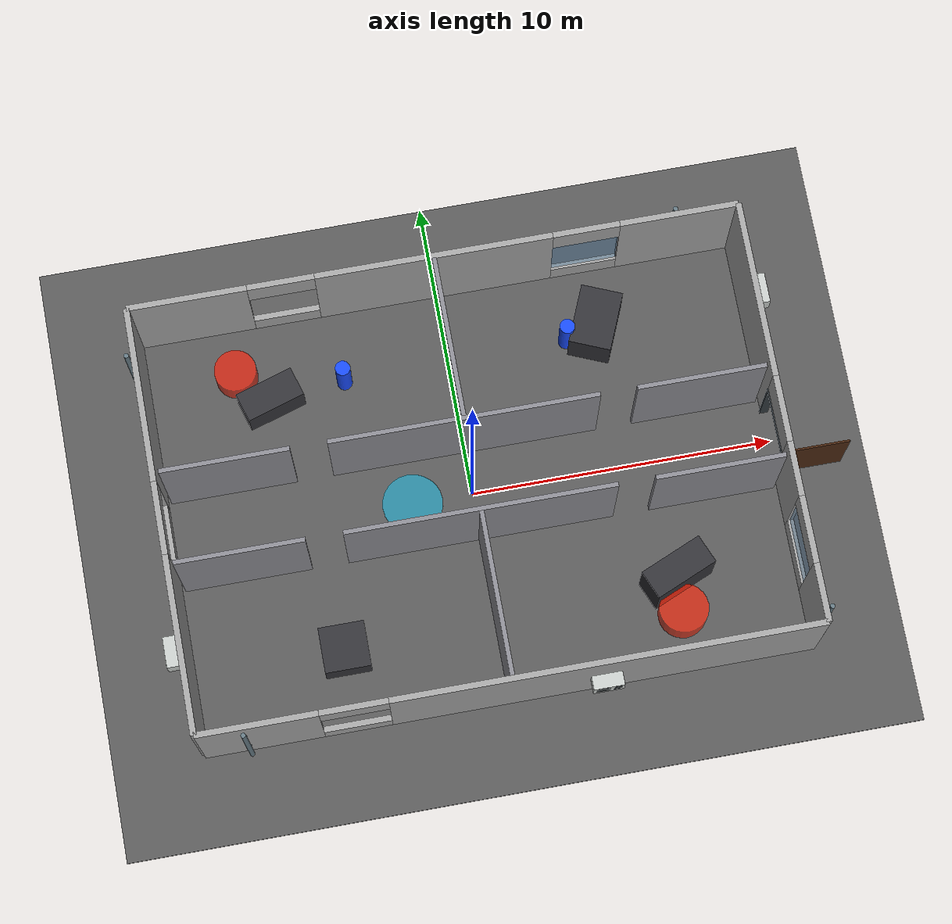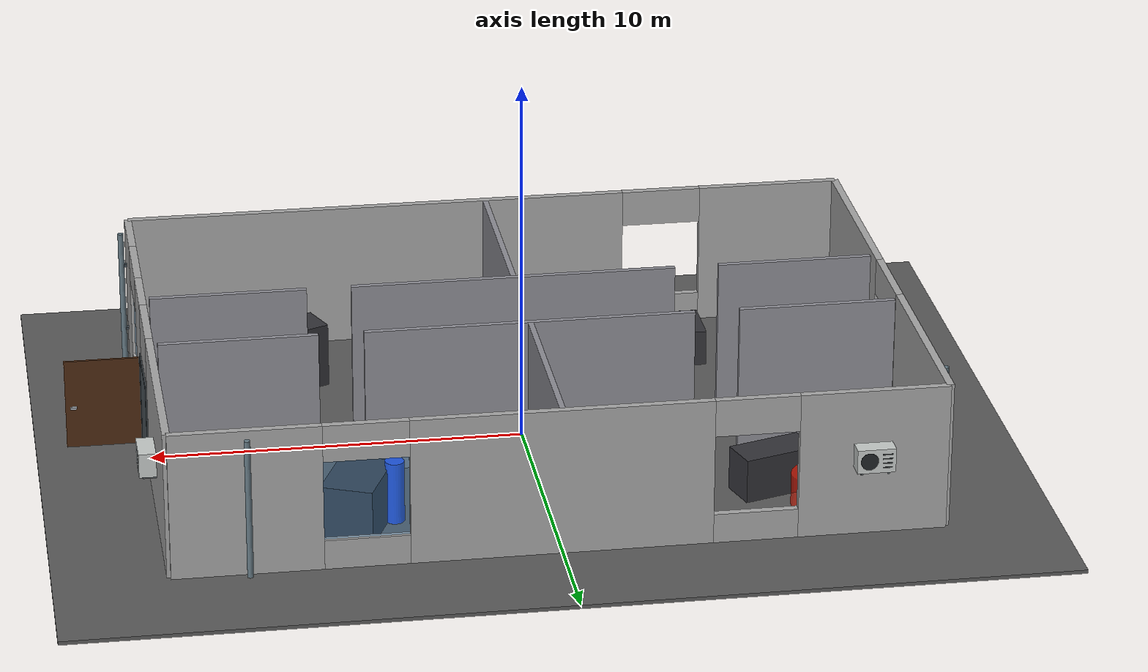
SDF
<?xml version="1.0" ?>

<sdf version="1.9">

  <world name="fire_scout_floor">

    <!-- Physics                   -->

    <physics name="1ms" type="ignored">
      <max_step_size>0.001</max_step_size>
      <real_time_factor>1.0</real_time_factor>
    </physics>

    <gravity>0 0 -9.81</gravity>

    <magnetic_field>6e-06 2.3e-05 -4.2e-05</magnetic_field>

    <atmosphere type="adiabatic"/>

    <spherical_coordinates>
      <surface_model>EARTH_WGS84</surface_model>
      <world_frame_orientation>ENU</world_frame_orientation>
      <latitude_deg>47.397971057728974</latitude_deg>
      <longitude_deg>8.546163739800146</longitude_deg>
      <elevation>488</elevation>
      <heading_deg>0</heading_deg>
    </spherical_coordinates>

    <!-- Gazebo systems            -->

    <plugin
      filename="gz-sim-physics-system"
      name="gz::sim::systems::Physics"/>

    <plugin
      filename="gz-sim-user-commands-system"
      name="gz::sim::systems::UserCommands"/>

    <plugin
      filename="gz-sim-scene-broadcaster-system"
      name="gz::sim::systems::SceneBroadcaster"/>

    <!-- Gazebo sensor systems     -->
    <!-- Required by PX4 x500      -->

    <plugin
      filename="gz-sim-sensors-system"
      name="gz::sim::systems::Sensors">
      <render_engine>ogre2</render_engine>
    </plugin>

    <plugin
      filename="gz-sim-imu-system"
      name="gz::sim::systems::Imu">
    </plugin>

    <plugin
      filename="gz-sim-air-pressure-system"
      name="gz::sim::systems::AirPressure">
    </plugin>

    <plugin
      filename="gz-sim-magnetometer-system"
      name="gz::sim::systems::Magnetometer">
    </plugin>

    <plugin
      filename="gz-sim-navsat-system"
      name="gz::sim::systems::NavSat">
    </plugin>

    <!-- Lighting                  -->

    <light type="directional" name="sun">
      <cast_shadows>true</cast_shadows>

      <pose>0 0 10 0 0 0</pose>

      <diffuse>0.8 0.8 0.8 1</diffuse>
      <specular>0.2 0.2 0.2 1</specular>

      <direction>-0.5 0.2 -1</direction>
    </light>

    <!-- Floor                     -->

    <model name="floor">

      <static>true</static>

      <link name="floor_link">

        <collision name="floor_collision">

          <pose>0 0 -0.05 0 0 0</pose>

          <geometry>
            <box>
              <size>26 20 0.1</size>
            </box>
          </geometry>

        </collision>

        <visual name="floor_visual">

          <pose>0 0 -0.05 0 0 0</pose>

          <geometry>
            <box>
              <size>26 20 0.1</size>
            </box>
          </geometry>

          <material>
            <ambient>0.30 0.30 0.30 1</ambient>
            <diffuse>0.35 0.35 0.35 1</diffuse>
          </material>

        </visual>

      </link>

    </model>

    <!-- Building                                               -->
    <!-- Size approximately 20 x 14 x 4 m                       -->
    <!-- Entrance / window on west wall                         -->

    <model name="building">

      <static>true</static>

      <!-- NORTH WALL -->

      <!-- NORTH WALL: one window for each north-side room        -->
      <!-- NW room window: centre x=-5, y=7, OPEN                 -->
      <!-- NE room window: centre x=+5, y=7, GLASS                -->
      <!-- Both openings: width=2.2 m, z=0.8~3.0 m                -->

      <!-- Wall segment: x=-10 ... -6.1 -->
      <link name="north_wall_far_west">

        <pose>-8.05 7 2 0 0 0</pose>

        <collision name="collision">
          <geometry>
            <box>
              <size>3.9 0.2 4</size>
            </box>
          </geometry>
        </collision>

        <visual name="visual">
          <geometry>
            <box>
              <size>3.9 0.2 4</size>
            </box>
          </geometry>

          <material>
            <ambient>0.65 0.65 0.65 1</ambient>
            <diffuse>0.65 0.65 0.65 1</diffuse>
          </material>
        </visual>

      </link>

      <!-- Wall segment between the two windows: x=-3.9 ... +3.9 -->
      <link name="north_wall_middle">

        <pose>0 7 2 0 0 0</pose>

        <collision name="collision">
          <geometry>
            <box>
              <size>7.8 0.2 4</size>
            </box>
          </geometry>
        </collision>

        <visual name="visual">
          <geometry>
            <box>
              <size>7.8 0.2 4</size>
            </box>
          </geometry>

          <material>
            <ambient>0.65 0.65 0.65 1</ambient>
            <diffuse>0.65 0.65 0.65 1</diffuse>
          </material>
        </visual>

      </link>

      <!-- Wall segment: x=+6.1 ... +10 -->
      <link name="north_wall_far_east">

        <pose>8.05 7 2 0 0 0</pose>

        <collision name="collision">
          <geometry>
            <box>
              <size>3.9 0.2 4</size>
            </box>
          </geometry>
        </collision>

        <visual name="visual">
          <geometry>
            <box>
              <size>3.9 0.2 4</size>
            </box>
          </geometry>

          <material>
            <ambient>0.65 0.65 0.65 1</ambient>
            <diffuse>0.65 0.65 0.65 1</diffuse>
          </material>
        </visual>

      </link>

      <!-- NW ROOM WINDOW: OPEN -->
      <link name="north_west_window_sill">

        <pose>-5 7 0.4 0 0 0</pose>

        <collision name="collision">
          <geometry>
            <box>
              <size>2.2 0.2 0.8</size>
            </box>
          </geometry>
        </collision>

        <visual name="visual">
          <geometry>
            <box>
              <size>2.2 0.2 0.8</size>
            </box>
          </geometry>

          <material>
            <ambient>0.65 0.65 0.65 1</ambient>
            <diffuse>0.65 0.65 0.65 1</diffuse>
          </material>
        </visual>

      </link>

      <link name="north_west_window_header">

        <pose>-5 7 3.5 0 0 0</pose>

        <collision name="collision">
          <geometry>
            <box>
              <size>2.2 0.2 1.0</size>
            </box>
          </geometry>
        </collision>

        <visual name="visual">
          <geometry>
            <box>
              <size>2.2 0.2 1.0</size>
            </box>
          </geometry>

          <material>
            <ambient>0.65 0.65 0.65 1</ambient>
            <diffuse>0.65 0.65 0.65 1</diffuse>
          </material>
        </visual>

      </link>

      <!-- NE ROOM WINDOW: GLASS -->
      <!-- Keep the original link names for the existing north window frame. -->
      <link name="north_window_sill">

        <pose>5 7 0.4 0 0 0</pose>

        <collision name="collision">
          <geometry>
            <box>
              <size>2.2 0.2 0.8</size>
            </box>
          </geometry>
        </collision>

        <visual name="visual">
          <geometry>
            <box>
              <size>2.2 0.2 0.8</size>
            </box>
          </geometry>

          <material>
            <ambient>0.65 0.65 0.65 1</ambient>
            <diffuse>0.65 0.65 0.65 1</diffuse>
          </material>
        </visual>

      </link>

      <link name="north_window_header">

        <pose>5 7 3.5 0 0 0</pose>

        <collision name="collision">
          <geometry>
            <box>
              <size>2.2 0.2 1.0</size>
            </box>
          </geometry>
        </collision>

        <visual name="visual">
          <geometry>
            <box>
              <size>2.2 0.2 1.0</size>
            </box>
          </geometry>

          <material>
            <ambient>0.65 0.65 0.65 1</ambient>
            <diffuse>0.65 0.65 0.65 1</diffuse>
          </material>
        </visual>

      </link>

      <!-- Physical glass panel in the NE room window -->
      <link name="north_window_glass">

        <pose>5 7 1.9 0 0 0</pose>

        <collision name="collision">
          <geometry>
            <box>
              <size>2.2 0.04 2.2</size>
            </box>
          </geometry>
        </collision>

        <visual name="visual">
          <geometry>
            <box>
              <size>2.2 0.04 2.2</size>
            </box>
          </geometry>

          <material>
            <ambient>0.25 0.55 0.80 0.35</ambient>
            <diffuse>0.25 0.55 0.80 0.35</diffuse>
            <specular>0.85 0.85 0.90 0.35</specular>
          </material>

          <transparency>0.65</transparency>
        </visual>

      </link>

      <!-- SOUTH WALL -->

      <!-- SOUTH WALL WITH SW ROOM WINDOW                         -->
      <!-- SW room window centre: x=-5, y=-7                      -->
      <!-- Window is OPEN                                         -->
      <!-- Opening: width=2.2 m, z=0.8~3.0 m                      -->

      <!-- Wall segment: x=-10 ... -6.1 -->
      <link name="south_wall_west">

        <pose>-8.05 -7 2 0 0 0</pose>

        <collision name="collision">
          <geometry>
            <box>
              <size>3.9 0.2 4</size>
            </box>
          </geometry>
        </collision>

        <visual name="visual">
          <geometry>
            <box>
              <size>3.9 0.2 4</size>
            </box>
          </geometry>

          <material>
            <ambient>0.65 0.65 0.65 1</ambient>
            <diffuse>0.65 0.65 0.65 1</diffuse>
          </material>
        </visual>

      </link>

      <!-- Wall segment: x=-3.9 ... +10 -->
      <link name="south_wall_east">

        <pose>3.05 -7 2 0 0 0</pose>

        <collision name="collision">
          <geometry>
            <box>
              <size>13.9 0.2 4</size>
            </box>
          </geometry>
        </collision>

        <visual name="visual">
          <geometry>
            <box>
              <size>13.9 0.2 4</size>
            </box>
          </geometry>

          <material>
            <ambient>0.65 0.65 0.65 1</ambient>
            <diffuse>0.65 0.65 0.65 1</diffuse>
          </material>
        </visual>

      </link>

      <!-- SW ROOM WINDOW: OPEN -->
      <link name="south_west_window_sill">

        <pose>-5 -7 0.4 0 0 0</pose>

        <collision name="collision">
          <geometry>
            <box>
              <size>2.2 0.2 0.8</size>
            </box>
          </geometry>
        </collision>

        <visual name="visual">
          <geometry>
            <box>
              <size>2.2 0.2 0.8</size>
            </box>
          </geometry>

          <material>
            <ambient>0.65 0.65 0.65 1</ambient>
            <diffuse>0.65 0.65 0.65 1</diffuse>
          </material>
        </visual>

      </link>

      <link name="south_west_window_header">

        <pose>-5 -7 3.5 0 0 0</pose>

        <collision name="collision">
          <geometry>
            <box>
              <size>2.2 0.2 1.0</size>
            </box>
          </geometry>
        </collision>

        <visual name="visual">
          <geometry>
            <box>
              <size>2.2 0.2 1.0</size>
            </box>
          </geometry>

          <material>
            <ambient>0.65 0.65 0.65 1</ambient>
            <diffuse>0.65 0.65 0.65 1</diffuse>
          </material>
        </visual>

      </link>

      <!-- EAST WALL -->

    <!-- EAST WALL WITH WINDOW C                                -->
    <!-- Window centre: x=10, y=-4                              -->
    <!-- Opening: width=2.2 m, z=0.8~3.0 m                      -->

    <link name="east_wall_south">

    <pose>10 -6.05 2 0 0 0</pose>

    <collision name="collision">
        <geometry>
        <box>
            <size>0.2 1.9 4</size>
        </box>
        </geometry>
    </collision>

    <visual name="visual">
        <geometry>
        <box>
            <size>0.2 1.9 4</size>
        </box>
        </geometry>

        <material>
        <ambient>0.65 0.65 0.65 1</ambient>
        <diffuse>0.65 0.65 0.65 1</diffuse>
        </material>
    </visual>

    </link>

      <link name="east_wall_door_south">
        <pose>10 -2 2 0 0 0</pose>
        <collision name="body_collision">
          <pose>0 0 0 0 0 0</pose>
          <geometry>
            <box>
              <size>0.2 1.8 4</size>
            </box>
          </geometry>
        </collision>
        <visual name="body_visual">
          <pose>0 0 0 0 0 0</pose>
          <geometry>
            <box>
              <size>0.2 1.8 4</size>
            </box>
          </geometry>
          <material>
            <ambient>0.65 0.65 0.65 1</ambient>
            <diffuse>0.65 0.65 0.65 1</diffuse>
          </material>
        </visual>
      </link>

      <link name="east_wall_door_north">
        <pose>10 4.05 2 0 0 0</pose>
        <collision name="body_collision">
          <pose>0 0 0 0 0 0</pose>
          <geometry>
            <box>
              <size>0.2 5.9 4</size>
            </box>
          </geometry>
        </collision>
        <visual name="body_visual">
          <pose>0 0 0 0 0 0</pose>
          <geometry>
            <box>
              <size>0.2 5.9 4</size>
            </box>
          </geometry>
          <material>
            <ambient>0.65 0.65 0.65 1</ambient>
            <diffuse>0.65 0.65 0.65 1</diffuse>
          </material>
        </visual>
      </link>

      <link name="east_door_wall_header">
        <pose>10 0 3.3 0 0 0</pose>
        <collision name="body_collision">
          <pose>0 0 0 0 0 0</pose>
          <geometry>
            <box>
              <size>0.2 2.2 1.4</size>
            </box>
          </geometry>
        </collision>
        <visual name="body_visual">
          <pose>0 0 0 0 0 0</pose>
          <geometry>
            <box>
              <size>0.2 2.2 1.4</size>
            </box>
          </geometry>
          <material>
            <ambient>0.65 0.65 0.65 1</ambient>
            <diffuse>0.65 0.65 0.65 1</diffuse>
          </material>
        </visual>
      </link>

      <link name="east_door_jamb_south">
        <pose>10 -1.05 1.3 0 0 0</pose>
        <collision name="body_collision">
          <pose>0 0 0 0 0 0</pose>
          <geometry>
            <box>
              <size>0.28 0.1 2.6</size>
            </box>
          </geometry>
        </collision>
        <visual name="body_visual">
          <pose>0 0 0 0 0 0</pose>
          <geometry>
            <box>
              <size>0.28 0.1 2.6</size>
            </box>
          </geometry>
          <material>
            <ambient>0.20 0.23 0.25 1</ambient>
            <diffuse>0.20 0.23 0.25 1</diffuse>
          </material>
        </visual>
      </link>

      <link name="east_door_jamb_north">
        <pose>10 1.05 1.3 0 0 0</pose>
        <collision name="body_collision">
          <pose>0 0 0 0 0 0</pose>
          <geometry>
            <box>
              <size>0.28 0.1 2.6</size>
            </box>
          </geometry>
        </collision>
        <visual name="body_visual">
          <pose>0 0 0 0 0 0</pose>
          <geometry>
            <box>
              <size>0.28 0.1 2.6</size>
            </box>
          </geometry>
          <material>
            <ambient>0.20 0.23 0.25 1</ambient>
            <diffuse>0.20 0.23 0.25 1</diffuse>
          </material>
        </visual>
      </link>

      <link name="east_door_frame_top">
        <pose>10 0 2.55 0 0 0</pose>
        <collision name="body_collision">
          <pose>0 0 0 0 0 0</pose>
          <geometry>
            <box>
              <size>0.28 2 0.1</size>
            </box>
          </geometry>
        </collision>
        <visual name="body_visual">
          <pose>0 0 0 0 0 0</pose>
          <geometry>
            <box>
              <size>0.28 2 0.1</size>
            </box>
          </geometry>
          <material>
            <ambient>0.20 0.23 0.25 1</ambient>
            <diffuse>0.20 0.23 0.25 1</diffuse>
          </material>
        </visual>
      </link>

      <link name="east_door_leaf_open">
        <pose>11.16 -1.05 1.25 0 0 0</pose>
        <collision name="body_collision">
          <pose>0 0 0 0 0 0</pose>
          <geometry>
            <box>
              <size>2 0.06 2.5</size>
            </box>
          </geometry>
        </collision>
        <visual name="body_visual">
          <pose>0 0 0 0 0 0</pose>
          <geometry>
            <box>
              <size>2 0.06 2.5</size>
            </box>
          </geometry>
          <material>
            <ambient>0.30 0.16 0.07 1</ambient>
            <diffuse>0.30 0.16 0.07 1</diffuse>
          </material>
        </visual>
        <collision name="handle_collision">
          <pose>0.78 0.065 -0.1 0 0 0</pose>
          <geometry>
            <box>
              <size>0.18 0.07 0.06</size>
            </box>
          </geometry>
        </collision>
        <visual name="handle_visual">
          <pose>0.78 0.065 -0.1 0 0 0</pose>
          <geometry>
            <box>
              <size>0.18 0.07 0.06</size>
            </box>
          </geometry>
          <material>
            <ambient>0.65 0.67 0.70 1</ambient>
            <diffuse>0.65 0.67 0.70 1</diffuse>
          </material>
        </visual>
      </link>

    <link name="east_window_sill">

    <pose>10 -4 0.4 0 0 0</pose>

    <collision name="collision">
        <geometry>
        <box>
            <size>0.2 2.2 0.8</size>
        </box>
        </geometry>
    </collision>

    <visual name="visual">
        <geometry>
        <box>
            <size>0.2 2.2 0.8</size>
        </box>
        </geometry>

        <material>
        <ambient>0.65 0.65 0.65 1</ambient>
        <diffuse>0.65 0.65 0.65 1</diffuse>
        </material>
    </visual>

    </link>

    <link name="east_window_header">

    <pose>10 -4 3.5 0 0 0</pose>

    <collision name="collision">
        <geometry>
        <box>
            <size>0.2 2.2 1.0</size>
        </box>
        </geometry>
    </collision>

    <visual name="visual">
        <geometry>
        <box>
            <size>0.2 2.2 1.0</size>
        </box>
        </geometry>

        <material>
        <ambient>0.65 0.65 0.65 1</ambient>
        <diffuse>0.65 0.65 0.65 1</diffuse>
        </material>
    </visual>

    </link>

      <!-- SE ROOM WINDOW: GLASS -->
      <!-- Existing east window centre: x=10, y=-4 -->
      <link name="east_window_glass">

        <pose>10 -4 1.9 0 0 0</pose>

        <collision name="collision">
          <geometry>
            <box>
              <size>0.04 2.2 2.2</size>
            </box>
          </geometry>
        </collision>

        <visual name="visual">
          <geometry>
            <box>
              <size>0.04 2.2 2.2</size>
            </box>
          </geometry>

          <material>
            <ambient>0.25 0.55 0.80 0.35</ambient>
            <diffuse>0.25 0.55 0.80 0.35</diffuse>
            <specular>0.85 0.85 0.90 0.35</specular>
          </material>

          <transparency>0.65</transparency>
        </visual>

      </link>

      <!-- WEST CORRIDOR ENTRANCE / ORIGINAL OPENING               -->
      <!-- This opening remains open and is NOT counted as a room   -->
      <!-- window. It preserves the original west-side entry path.  -->

      <!-- WEST WALL LOWER PART -->

      <link name="west_wall_lower">

        <pose>-10 -4.1 2 0 0 0</pose>

        <collision name="collision">
          <geometry>
            <box>
              <size>0.2 5.8 4</size>
            </box>
          </geometry>
        </collision>

        <visual name="visual">
          <geometry>
            <box>
              <size>0.2 5.8 4</size>
            </box>
          </geometry>

          <material>
            <ambient>0.65 0.65 0.65 1</ambient>
            <diffuse>0.65 0.65 0.65 1</diffuse>
          </material>
        </visual>

      </link>

      <!-- WEST WALL UPPER PART -->

      <link name="west_wall_upper">

        <pose>-10 4.1 2 0 0 0</pose>

        <collision name="collision">
          <geometry>
            <box>
              <size>0.2 5.8 4</size>
            </box>
          </geometry>
        </collision>

        <visual name="visual">
          <geometry>
            <box>
              <size>0.2 5.8 4</size>
            </box>
          </geometry>

          <material>
            <ambient>0.65 0.65 0.65 1</ambient>
            <diffuse>0.65 0.65 0.65 1</diffuse>
          </material>
        </visual>

      </link>

      <!-- WINDOW SILL -->

      <link name="window_sill">

        <pose>-10 0 0.4 0 0 0</pose>

        <collision name="collision">
          <geometry>
            <box>
              <size>0.2 2.4 0.8</size>
            </box>
          </geometry>
        </collision>

        <visual name="visual">
          <geometry>
            <box>
              <size>0.2 2.4 0.8</size>
            </box>
          </geometry>

          <material>
            <ambient>0.65 0.65 0.65 1</ambient>
            <diffuse>0.65 0.65 0.65 1</diffuse>
          </material>
        </visual>

      </link>

      <!-- WINDOW HEADER -->

      <link name="window_header">

        <pose>-10 0 3.5 0 0 0</pose>

        <collision name="collision">
          <geometry>
            <box>
              <size>0.2 2.4 1.0</size>
            </box>
          </geometry>
        </collision>

        <visual name="visual">
          <geometry>
            <box>
              <size>0.2 2.4 1.0</size>
            </box>
          </geometry>

          <material>
            <ambient>0.65 0.65 0.65 1</ambient>
            <diffuse>0.65 0.65 0.65 1</diffuse>
          </material>
        </visual>

      </link>

      <!-- CENTRAL CORRIDOR NORTH WALL -->

      <link name="corridor_north_left">

        <pose>-7.7 1.5 2 0 0 0</pose>

        <collision name="collision">
          <geometry>
            <box>
              <size>4.2 0.15 4</size>
            </box>
          </geometry>
        </collision>

        <visual name="visual">
          <geometry>
            <box>
              <size>4.2 0.15 4</size>
            </box>
          </geometry>

          <material>
            <ambient>0.55 0.55 0.58 1</ambient>
            <diffuse>0.55 0.55 0.58 1</diffuse>
          </material>
        </visual>

      </link>

      <link name="corridor_north_middle">

        <pose>0 1.5 2 0 0 0</pose>

        <collision name="collision">
          <geometry>
            <box>
              <size>8.8 0.15 4</size>
            </box>
          </geometry>
        </collision>

        <visual name="visual">
          <geometry>
            <box>
              <size>8.8 0.15 4</size>
            </box>
          </geometry>

          <material>
            <ambient>0.55 0.55 0.58 1</ambient>
            <diffuse>0.55 0.55 0.58 1</diffuse>
          </material>
        </visual>

      </link>

      <link name="corridor_north_right">

        <pose>7.7 1.5 2 0 0 0</pose>

        <collision name="collision">
          <geometry>
            <box>
              <size>4.2 0.15 4</size>
            </box>
          </geometry>
        </collision>

        <visual name="visual">
          <geometry>
            <box>
              <size>4.2 0.15 4</size>
            </box>
          </geometry>

          <material>
            <ambient>0.55 0.55 0.58 1</ambient>
            <diffuse>0.55 0.55 0.58 1</diffuse>
          </material>
        </visual>

      </link>

      <!-- CENTRAL CORRIDOR SOUTH WALL -->

      <link name="corridor_south_left">

        <pose>-7.7 -1.5 2 0 0 0</pose>

        <collision name="collision">
          <geometry>
            <box>
              <size>4.2 0.15 4</size>
            </box>
          </geometry>
        </collision>

        <visual name="visual">
          <geometry>
            <box>
              <size>4.2 0.15 4</size>
            </box>
          </geometry>

          <material>
            <ambient>0.55 0.55 0.58 1</ambient>
            <diffuse>0.55 0.55 0.58 1</diffuse>
          </material>
        </visual>

      </link>

      <link name="corridor_south_middle">

        <pose>0 -1.5 2 0 0 0</pose>

        <collision name="collision">
          <geometry>
            <box>
              <size>8.8 0.15 4</size>
            </box>
          </geometry>
        </collision>

        <visual name="visual">
          <geometry>
            <box>
              <size>8.8 0.15 4</size>
            </box>
          </geometry>

          <material>
            <ambient>0.55 0.55 0.58 1</ambient>
            <diffuse>0.55 0.55 0.58 1</diffuse>
          </material>
        </visual>

      </link>

      <link name="corridor_south_right">

        <pose>7.7 -1.5 2 0 0 0</pose>

        <collision name="collision">
          <geometry>
            <box>
              <size>4.2 0.15 4</size>
            </box>
          </geometry>
        </collision>

        <visual name="visual">
          <geometry>
            <box>
              <size>4.2 0.15 4</size>
            </box>
          </geometry>

          <material>
            <ambient>0.55 0.55 0.58 1</ambient>
            <diffuse>0.55 0.55 0.58 1</diffuse>
          </material>
        </visual>

      </link>

      <!-- ROOM DIVIDER NORTH -->

      <link name="north_divider">

        <pose>0 4.25 2 0 0 0</pose>

        <collision name="collision">
          <geometry>
            <box>
              <size>0.15 5.35 4</size>
            </box>
          </geometry>
        </collision>

        <visual name="visual">
          <geometry>
            <box>
              <size>0.15 5.35 4</size>
            </box>
          </geometry>

          <material>
            <ambient>0.55 0.55 0.58 1</ambient>
            <diffuse>0.55 0.55 0.58 1</diffuse>
          </material>
        </visual>

      </link>

      <!-- ROOM DIVIDER SOUTH -->

      <link name="south_divider">

        <pose>0 -4.25 2 0 0 0</pose>

        <collision name="collision">
          <geometry>
            <box>
              <size>0.15 5.35 4</size>
            </box>
          </geometry>
        </collision>

        <visual name="visual">
          <geometry>
            <box>
              <size>0.15 5.35 4</size>
            </box>
          </geometry>

          <material>
            <ambient>0.55 0.55 0.58 1</ambient>
            <diffuse>0.55 0.55 0.58 1</diffuse>
          </material>
        </visual>

      </link>

    </model>

    <!-- Large obstacles           -->

    <model name="obstacle_region1">

      <static>true</static>

      <pose>-6 4.2 0.6 0 0 0.3</pose>

      <link name="link">

        <collision name="collision">
          <geometry>
            <box>
              <size>2.0 1.0 1.2</size>
            </box>
          </geometry>
        </collision>

        <visual name="visual">
          <geometry>
            <box>
              <size>2.0 1.0 1.2</size>
            </box>
          </geometry>

          <material>
            <ambient>0.20 0.20 0.22 1</ambient>
            <diffuse>0.20 0.20 0.22 1</diffuse>
          </material>
        </visual>

      </link>

    </model>

    <model name="obstacle_region2">

      <static>true</static>

      <pose>5 4.8 0.75 0 0 -0.4</pose>

      <link name="link">

        <collision name="collision">
          <geometry>
            <box>
              <size>1.4 2.0 1.5</size>
            </box>
          </geometry>
        </collision>

        <visual name="visual">
          <geometry>
            <box>
              <size>1.4 2.0 1.5</size>
            </box>
          </geometry>

          <material>
            <ambient>0.20 0.20 0.22 1</ambient>
            <diffuse>0.20 0.20 0.22 1</diffuse>
          </material>
        </visual>

      </link>

    </model>

    <model name="obstacle_region3">

      <static>true</static>

      <pose>-5 -4.5 0.5 0 0 0</pose>

      <link name="link">

        <collision name="collision">
          <geometry>
            <box>
              <size>1.5 1.5 1.0</size>
            </box>
          </geometry>
        </collision>

        <visual name="visual">
          <geometry>
            <box>
              <size>1.5 1.5 1.0</size>
            </box>
          </geometry>

          <material>
            <ambient>0.20 0.20 0.22 1</ambient>
            <diffuse>0.20 0.20 0.22 1</diffuse>
          </material>
        </visual>

      </link>

    </model>

    <model name="obstacle_region4">

      <static>true</static>

      <pose>6 -4 0.9 0 0 0.4</pose>

      <link name="link">

        <collision name="collision">
          <geometry>
            <box>
              <size>2.2 1.0 1.8</size>
            </box>
          </geometry>
        </collision>

        <visual name="visual">
          <geometry>
            <box>
              <size>2.2 1.0 1.8</size>
            </box>
          </geometry>

          <material>
            <ambient>0.20 0.20 0.22 1</ambient>
            <diffuse>0.20 0.20 0.22 1</diffuse>
          </material>
        </visual>

      </link>

    </model>

    <!-- Fire Ground Truth Targets -->
    <!-- purely visual for Phase 1 -->

    <model name="fire_01">

      <static>true</static>

      <pose>-7 5.3 0.45 0 0 0</pose>

      <link name="link">

        <visual name="visual">

          <geometry>
            <cylinder>
              <radius>0.7</radius>
              <length>0.9</length>
            </cylinder>
          </geometry>

          <material>
            <ambient>1.0 0.10 0.0 0.65</ambient>
            <diffuse>1.0 0.10 0.0 0.65</diffuse>
          </material>

        </visual>

      </link>

    </model>

    <model name="fire_02">

      <static>true</static>

      <pose>6 -5.2 0.5 0 0 0</pose>

      <link name="link">

        <visual name="visual">

          <geometry>
            <cylinder>
              <radius>0.8</radius>
              <length>1.0</length>
            </cylinder>
          </geometry>

          <material>
            <ambient>1.0 0.12 0.0 0.65</ambient>
            <diffuse>1.0 0.12 0.0 0.65</diffuse>
          </material>

        </visual>

      </link>

    </model>

    <!-- Person Ground Truth       -->

    <model name="victim_01">

      <static>true</static>

      <pose>-3.5 4.5 0.85 0 0 0</pose>

      <link name="link">

        <collision name="collision">

          <geometry>
            <cylinder>
              <radius>0.25</radius>
              <length>1.7</length>
            </cylinder>
          </geometry>

        </collision>

        <visual name="visual">

          <geometry>
            <cylinder>
              <radius>0.25</radius>
              <length>1.7</length>
            </cylinder>
          </geometry>

          <material>
            <ambient>0.1 0.3 1.0 1</ambient>
            <diffuse>0.1 0.3 1.0 1</diffuse>
          </material>

        </visual>

      </link>

    </model>

    <model name="victim_02">

      <static>true</static>

      <pose>4.0 4.6 0.85 0 0 0</pose>

      <link name="link">

        <collision name="collision">

          <geometry>
            <cylinder>
              <radius>0.25</radius>
              <length>1.7</length>
            </cylinder>
          </geometry>

        </collision>

        <visual name="visual">

          <geometry>
            <cylinder>
              <radius>0.25</radius>
              <length>1.7</length>
            </cylinder>
          </geometry>

          <material>
            <ambient>0.1 0.3 1.0 1</ambient>
            <diffuse>0.1 0.3 1.0 1</diffuse>
          </material>

        </visual>

      </link>

    </model>

    <!-- Rendezvous visual marker  -->

    <model name="rendezvous_marker">

      <static>true</static>

      <pose>-2 0 0.03 0 0 0</pose>

      <link name="link">

        <visual name="visual">

          <geometry>
            <cylinder>
              <radius>1.0</radius>
              <length>0.03</length>
            </cylinder>
          </geometry>

          <material>
            <ambient>0.0 0.8 1.0 0.45</ambient>
            <diffuse>0.0 0.8 1.0 0.45</diffuse>
          </material>

        </visual>

      </link>

    </model>

    <model name="ac_outdoor_west">
      <static>true</static>
      <pose>-10.365 -4 2.3 0 0 -1.5707963</pose>
      <link name="housing">
        <collision name="housing_collision">
          <pose>0 0 0 0 0 0</pose>
          <geometry>
            <box>
              <size>1 0.45 0.65</size>
            </box>
          </geometry>
        </collision>
        <visual name="housing_visual">
          <pose>0 0 0 0 0 0</pose>
          <geometry>
            <box>
              <size>1 0.45 0.65</size>
            </box>
          </geometry>
          <material>
            <ambient>0.78 0.80 0.79 1</ambient>
            <diffuse>0.78 0.80 0.79 1</diffuse>
          </material>
        </visual>
        <visual name="fan_visual">
          <pose>-0.18 -0.227 0 1.5707963 0 0</pose>
          <geometry>
            <cylinder>
              <radius>0.23</radius>
              <length>0.008</length>
            </cylinder>
          </geometry>
          <material>
            <ambient>0.12 0.14 0.15 1</ambient>
            <diffuse>0.12 0.14 0.15 1</diffuse>
          </material>
        </visual>
        <visual name="vent_0_visual">
          <pose>0.29 -0.23 -0.18 0 0 0</pose>
          <geometry>
            <box>
              <size>0.25 0.012 0.025</size>
            </box>
          </geometry>
          <material>
            <ambient>0.24 0.26 0.27 1</ambient>
            <diffuse>0.24 0.26 0.27 1</diffuse>
          </material>
        </visual>
        <visual name="vent_1_visual">
          <pose>0.29 -0.23 -0.06 0 0 0</pose>
          <geometry>
            <box>
              <size>0.25 0.012 0.025</size>
            </box>
          </geometry>
          <material>
            <ambient>0.24 0.26 0.27 1</ambient>
            <diffuse>0.24 0.26 0.27 1</diffuse>
          </material>
        </visual>
        <visual name="vent_2_visual">
          <pose>0.29 -0.23 0.06 0 0 0</pose>
          <geometry>
            <box>
              <size>0.25 0.012 0.025</size>
            </box>
          </geometry>
          <material>
            <ambient>0.24 0.26 0.27 1</ambient>
            <diffuse>0.24 0.26 0.27 1</diffuse>
          </material>
        </visual>
        <visual name="vent_3_visual">
          <pose>0.29 -0.23 0.18 0 0 0</pose>
          <geometry>
            <box>
              <size>0.25 0.012 0.025</size>
            </box>
          </geometry>
          <material>
            <ambient>0.24 0.26 0.27 1</ambient>
            <diffuse>0.24 0.26 0.27 1</diffuse>
          </material>
        </visual>
        <collision name="bracket_0_collision">
          <pose>-0.35 0.05 -0.37 0 0 0</pose>
          <geometry>
            <box>
              <size>0.06 0.36 0.08</size>
            </box>
          </geometry>
        </collision>
        <visual name="bracket_0_visual">
          <pose>-0.35 0.05 -0.37 0 0 0</pose>
          <geometry>
            <box>
              <size>0.06 0.36 0.08</size>
            </box>
          </geometry>
          <material>
            <ambient>0.35 0.38 0.40 1</ambient>
            <diffuse>0.35 0.38 0.40 1</diffuse>
          </material>
        </visual>
        <collision name="bracket_1_collision">
          <pose>0.35 0.05 -0.37 0 0 0</pose>
          <geometry>
            <box>
              <size>0.06 0.36 0.08</size>
            </box>
          </geometry>
        </collision>
        <visual name="bracket_1_visual">
          <pose>0.35 0.05 -0.37 0 0 0</pose>
          <geometry>
            <box>
              <size>0.06 0.36 0.08</size>
            </box>
          </geometry>
          <material>
            <ambient>0.35 0.38 0.40 1</ambient>
            <diffuse>0.35 0.38 0.40 1</diffuse>
          </material>
        </visual>
      </link>
    </model>

    <model name="ac_outdoor_north">
      <static>true</static>
      <pose>-8 7.365 2.25 0 0 3.1415927</pose>
      <link name="housing">
        <collision name="housing_collision">
          <pose>0 0 0 0 0 0</pose>
          <geometry>
            <box>
              <size>1 0.45 0.65</size>
            </box>
          </geometry>
        </collision>
        <visual name="housing_visual">
          <pose>0 0 0 0 0 0</pose>
          <geometry>
            <box>
              <size>1 0.45 0.65</size>
            </box>
          </geometry>
          <material>
            <ambient>0.78 0.80 0.79 1</ambient>
            <diffuse>0.78 0.80 0.79 1</diffuse>
          </material>
        </visual>
        <visual name="fan_visual">
          <pose>-0.18 -0.227 0 1.5707963 0 0</pose>
          <geometry>
            <cylinder>
              <radius>0.23</radius>
              <length>0.008</length>
            </cylinder>
          </geometry>
          <material>
            <ambient>0.12 0.14 0.15 1</ambient>
            <diffuse>0.12 0.14 0.15 1</diffuse>
          </material>
        </visual>
        <visual name="vent_0_visual">
          <pose>0.29 -0.23 -0.18 0 0 0</pose>
          <geometry>
            <box>
              <size>0.25 0.012 0.025</size>
            </box>
          </geometry>
          <material>
            <ambient>0.24 0.26 0.27 1</ambient>
            <diffuse>0.24 0.26 0.27 1</diffuse>
          </material>
        </visual>
        <visual name="vent_1_visual">
          <pose>0.29 -0.23 -0.06 0 0 0</pose>
          <geometry>
            <box>
              <size>0.25 0.012 0.025</size>
            </box>
          </geometry>
          <material>
            <ambient>0.24 0.26 0.27 1</ambient>
            <diffuse>0.24 0.26 0.27 1</diffuse>
          </material>
        </visual>
        <visual name="vent_2_visual">
          <pose>0.29 -0.23 0.06 0 0 0</pose>
          <geometry>
            <box>
              <size>0.25 0.012 0.025</size>
            </box>
          </geometry>
          <material>
            <ambient>0.24 0.26 0.27 1</ambient>
            <diffuse>0.24 0.26 0.27 1</diffuse>
          </material>
        </visual>
        <visual name="vent_3_visual">
          <pose>0.29 -0.23 0.18 0 0 0</pose>
          <geometry>
            <box>
              <size>0.25 0.012 0.025</size>
            </box>
          </geometry>
          <material>
            <ambient>0.24 0.26 0.27 1</ambient>
            <diffuse>0.24 0.26 0.27 1</diffuse>
          </material>
        </visual>
        <collision name="bracket_0_collision">
          <pose>-0.35 0.05 -0.37 0 0 0</pose>
          <geometry>
            <box>
              <size>0.06 0.36 0.08</size>
            </box>
          </geometry>
        </collision>
        <visual name="bracket_0_visual">
          <pose>-0.35 0.05 -0.37 0 0 0</pose>
          <geometry>
            <box>
              <size>0.06 0.36 0.08</size>
            </box>
          </geometry>
          <material>
            <ambient>0.35 0.38 0.40 1</ambient>
            <diffuse>0.35 0.38 0.40 1</diffuse>
          </material>
        </visual>
        <collision name="bracket_1_collision">
          <pose>0.35 0.05 -0.37 0 0 0</pose>
          <geometry>
            <box>
              <size>0.06 0.36 0.08</size>
            </box>
          </geometry>
        </collision>
        <visual name="bracket_1_visual">
          <pose>0.35 0.05 -0.37 0 0 0</pose>
          <geometry>
            <box>
              <size>0.06 0.36 0.08</size>
            </box>
          </geometry>
          <material>
            <ambient>0.35 0.38 0.40 1</ambient>
            <diffuse>0.35 0.38 0.40 1</diffuse>
          </material>
        </visual>
      </link>
    </model>

    <model name="ac_outdoor_south">
      <static>true</static>
      <pose>3 -7.365 2.3 0 0 0</pose>
      <link name="housing">
        <collision name="housing_collision">
          <pose>0 0 0 0 0 0</pose>
          <geometry>
            <box>
              <size>1 0.45 0.65</size>
            </box>
          </geometry>
        </collision>
        <visual name="housing_visual">
          <pose>0 0 0 0 0 0</pose>
          <geometry>
            <box>
              <size>1 0.45 0.65</size>
            </box>
          </geometry>
          <material>
            <ambient>0.78 0.80 0.79 1</ambient>
            <diffuse>0.78 0.80 0.79 1</diffuse>
          </material>
        </visual>
        <visual name="fan_visual">
          <pose>-0.18 -0.227 0 1.5707963 0 0</pose>
          <geometry>
            <cylinder>
              <radius>0.23</radius>
              <length>0.008</length>
            </cylinder>
          </geometry>
          <material>
            <ambient>0.12 0.14 0.15 1</ambient>
            <diffuse>0.12 0.14 0.15 1</diffuse>
          </material>
        </visual>
        <visual name="vent_0_visual">
          <pose>0.29 -0.23 -0.18 0 0 0</pose>
          <geometry>
            <box>
              <size>0.25 0.012 0.025</size>
            </box>
          </geometry>
          <material>
            <ambient>0.24 0.26 0.27 1</ambient>
            <diffuse>0.24 0.26 0.27 1</diffuse>
          </material>
        </visual>
        <visual name="vent_1_visual">
          <pose>0.29 -0.23 -0.06 0 0 0</pose>
          <geometry>
            <box>
              <size>0.25 0.012 0.025</size>
            </box>
          </geometry>
          <material>
            <ambient>0.24 0.26 0.27 1</ambient>
            <diffuse>0.24 0.26 0.27 1</diffuse>
          </material>
        </visual>
        <visual name="vent_2_visual">
          <pose>0.29 -0.23 0.06 0 0 0</pose>
          <geometry>
            <box>
              <size>0.25 0.012 0.025</size>
            </box>
          </geometry>
          <material>
            <ambient>0.24 0.26 0.27 1</ambient>
            <diffuse>0.24 0.26 0.27 1</diffuse>
          </material>
        </visual>
        <visual name="vent_3_visual">
          <pose>0.29 -0.23 0.18 0 0 0</pose>
          <geometry>
            <box>
              <size>0.25 0.012 0.025</size>
            </box>
          </geometry>
          <material>
            <ambient>0.24 0.26 0.27 1</ambient>
            <diffuse>0.24 0.26 0.27 1</diffuse>
          </material>
        </visual>
        <collision name="bracket_0_collision">
          <pose>-0.35 0.05 -0.37 0 0 0</pose>
          <geometry>
            <box>
              <size>0.06 0.36 0.08</size>
            </box>
          </geometry>
        </collision>
        <visual name="bracket_0_visual">
          <pose>-0.35 0.05 -0.37 0 0 0</pose>
          <geometry>
            <box>
              <size>0.06 0.36 0.08</size>
            </box>
          </geometry>
          <material>
            <ambient>0.35 0.38 0.40 1</ambient>
            <diffuse>0.35 0.38 0.40 1</diffuse>
          </material>
        </visual>
        <collision name="bracket_1_collision">
          <pose>0.35 0.05 -0.37 0 0 0</pose>
          <geometry>
            <box>
              <size>0.06 0.36 0.08</size>
            </box>
          </geometry>
        </collision>
        <visual name="bracket_1_visual">
          <pose>0.35 0.05 -0.37 0 0 0</pose>
          <geometry>
            <box>
              <size>0.06 0.36 0.08</size>
            </box>
          </geometry>
          <material>
            <ambient>0.35 0.38 0.40 1</ambient>
            <diffuse>0.35 0.38 0.40 1</diffuse>
          </material>
        </visual>
      </link>
    </model>

    <model name="ac_outdoor_east">
      <static>true</static>
      <pose>10.365 4.5 2.2 0 0 1.5707963</pose>
      <link name="housing">
        <collision name="housing_collision">
          <pose>0 0 0 0 0 0</pose>
          <geometry>
            <box>
              <size>1 0.45 0.65</size>
            </box>
          </geometry>
        </collision>
        <visual name="housing_visual">
          <pose>0 0 0 0 0 0</pose>
          <geometry>
            <box>
              <size>1 0.45 0.65</size>
            </box>
          </geometry>
          <material>
            <ambient>0.78 0.80 0.79 1</ambient>
            <diffuse>0.78 0.80 0.79 1</diffuse>
          </material>
        </visual>
        <visual name="fan_visual">
          <pose>-0.18 -0.227 0 1.5707963 0 0</pose>
          <geometry>
            <cylinder>
              <radius>0.23</radius>
              <length>0.008</length>
            </cylinder>
          </geometry>
          <material>
            <ambient>0.12 0.14 0.15 1</ambient>
            <diffuse>0.12 0.14 0.15 1</diffuse>
          </material>
        </visual>
        <visual name="vent_0_visual">
          <pose>0.29 -0.23 -0.18 0 0 0</pose>
          <geometry>
            <box>
              <size>0.25 0.012 0.025</size>
            </box>
          </geometry>
          <material>
            <ambient>0.24 0.26 0.27 1</ambient>
            <diffuse>0.24 0.26 0.27 1</diffuse>
          </material>
        </visual>
        <visual name="vent_1_visual">
          <pose>0.29 -0.23 -0.06 0 0 0</pose>
          <geometry>
            <box>
              <size>0.25 0.012 0.025</size>
            </box>
          </geometry>
          <material>
            <ambient>0.24 0.26 0.27 1</ambient>
            <diffuse>0.24 0.26 0.27 1</diffuse>
          </material>
        </visual>
        <visual name="vent_2_visual">
          <pose>0.29 -0.23 0.06 0 0 0</pose>
          <geometry>
            <box>
              <size>0.25 0.012 0.025</size>
            </box>
          </geometry>
          <material>
            <ambient>0.24 0.26 0.27 1</ambient>
            <diffuse>0.24 0.26 0.27 1</diffuse>
          </material>
        </visual>
        <visual name="vent_3_visual">
          <pose>0.29 -0.23 0.18 0 0 0</pose>
          <geometry>
            <box>
              <size>0.25 0.012 0.025</size>
            </box>
          </geometry>
          <material>
            <ambient>0.24 0.26 0.27 1</ambient>
            <diffuse>0.24 0.26 0.27 1</diffuse>
          </material>
        </visual>
        <collision name="bracket_0_collision">
          <pose>-0.35 0.05 -0.37 0 0 0</pose>
          <geometry>
            <box>
              <size>0.06 0.36 0.08</size>
            </box>
          </geometry>
        </collision>
        <visual name="bracket_0_visual">
          <pose>-0.35 0.05 -0.37 0 0 0</pose>
          <geometry>
            <box>
              <size>0.06 0.36 0.08</size>
            </box>
          </geometry>
          <material>
            <ambient>0.35 0.38 0.40 1</ambient>
            <diffuse>0.35 0.38 0.40 1</diffuse>
          </material>
        </visual>
        <collision name="bracket_1_collision">
          <pose>0.35 0.05 -0.37 0 0 0</pose>
          <geometry>
            <box>
              <size>0.06 0.36 0.08</size>
            </box>
          </geometry>
        </collision>
        <visual name="bracket_1_visual">
          <pose>0.35 0.05 -0.37 0 0 0</pose>
          <geometry>
            <box>
              <size>0.06 0.36 0.08</size>
            </box>
          </geometry>
          <material>
            <ambient>0.35 0.38 0.40 1</ambient>
            <diffuse>0.35 0.38 0.40 1</diffuse>
          </material>
        </visual>
      </link>
    </model>

    <model name="water_pipe_west">
      <static>true</static>
      <pose>-10.24 5.5 1.9 0 0 -1.5707963</pose>
      <link name="pipe">
        <collision name="pipe_collision">
          <pose>0 0 0 0 0 0</pose>
          <geometry>
            <cylinder>
              <radius>0.08</radius>
              <length>3.8</length>
            </cylinder>
          </geometry>
        </collision>
        <visual name="pipe_visual">
          <pose>0 0 0 0 0 0</pose>
          <geometry>
            <cylinder>
              <radius>0.08</radius>
              <length>3.8</length>
            </cylinder>
          </geometry>
          <material>
            <ambient>0.40 0.48 0.52 1</ambient>
            <diffuse>0.40 0.48 0.52 1</diffuse>
          </material>
        </visual>
        <collision name="wall_mount_0_collision">
          <pose>0 0.085 -0.95 0 0 0</pose>
          <geometry>
            <box>
              <size>0.12 0.11 0.08</size>
            </box>
          </geometry>
        </collision>
        <visual name="wall_mount_0_visual">
          <pose>0 0.085 -0.95 0 0 0</pose>
          <geometry>
            <box>
              <size>0.12 0.11 0.08</size>
            </box>
          </geometry>
          <material>
            <ambient>0.24 0.28 0.31 1</ambient>
            <diffuse>0.24 0.28 0.31 1</diffuse>
          </material>
        </visual>
        <collision name="wall_mount_1_collision">
          <pose>0 0.085 0.95 0 0 0</pose>
          <geometry>
            <box>
              <size>0.12 0.11 0.08</size>
            </box>
          </geometry>
        </collision>
        <visual name="wall_mount_1_visual">
          <pose>0 0.085 0.95 0 0 0</pose>
          <geometry>
            <box>
              <size>0.12 0.11 0.08</size>
            </box>
          </geometry>
          <material>
            <ambient>0.24 0.28 0.31 1</ambient>
            <diffuse>0.24 0.28 0.31 1</diffuse>
          </material>
        </visual>
      </link>
    </model>

    <model name="water_pipe_north">
      <static>true</static>
      <pose>8 7.24 1.9 0 0 3.1415927</pose>
      <link name="pipe">
        <collision name="pipe_collision">
          <pose>0 0 0 0 0 0</pose>
          <geometry>
            <cylinder>
              <radius>0.08</radius>
              <length>3.8</length>
            </cylinder>
          </geometry>
        </collision>
        <visual name="pipe_visual">
          <pose>0 0 0 0 0 0</pose>
          <geometry>
            <cylinder>
              <radius>0.08</radius>
              <length>3.8</length>
            </cylinder>
          </geometry>
          <material>
            <ambient>0.40 0.48 0.52 1</ambient>
            <diffuse>0.40 0.48 0.52 1</diffuse>
          </material>
        </visual>
        <collision name="wall_mount_0_collision">
          <pose>0 0.085 -0.95 0 0 0</pose>
          <geometry>
            <box>
              <size>0.12 0.11 0.08</size>
            </box>
          </geometry>
        </collision>
        <visual name="wall_mount_0_visual">
          <pose>0 0.085 -0.95 0 0 0</pose>
          <geometry>
            <box>
              <size>0.12 0.11 0.08</size>
            </box>
          </geometry>
          <material>
            <ambient>0.24 0.28 0.31 1</ambient>
            <diffuse>0.24 0.28 0.31 1</diffuse>
          </material>
        </visual>
        <collision name="wall_mount_1_collision">
          <pose>0 0.085 0.95 0 0 0</pose>
          <geometry>
            <box>
              <size>0.12 0.11 0.08</size>
            </box>
          </geometry>
        </collision>
        <visual name="wall_mount_1_visual">
          <pose>0 0.085 0.95 0 0 0</pose>
          <geometry>
            <box>
              <size>0.12 0.11 0.08</size>
            </box>
          </geometry>
          <material>
            <ambient>0.24 0.28 0.31 1</ambient>
            <diffuse>0.24 0.28 0.31 1</diffuse>
          </material>
        </visual>
      </link>
    </model>

    <model name="water_pipe_south">
      <static>true</static>
      <pose>-8.5 -7.24 1.9 0 0 0</pose>
      <link name="pipe">
        <collision name="pipe_collision">
          <pose>0 0 0 0 0 0</pose>
          <geometry>
            <cylinder>
              <radius>0.08</radius>
              <length>3.8</length>
            </cylinder>
          </geometry>
        </collision>
        <visual name="pipe_visual">
          <pose>0 0 0 0 0 0</pose>
          <geometry>
            <cylinder>
              <radius>0.08</radius>
              <length>3.8</length>
            </cylinder>
          </geometry>
          <material>
            <ambient>0.40 0.48 0.52 1</ambient>
            <diffuse>0.40 0.48 0.52 1</diffuse>
          </material>
        </visual>
        <collision name="wall_mount_0_collision">
          <pose>0 0.085 -0.95 0 0 0</pose>
          <geometry>
            <box>
              <size>0.12 0.11 0.08</size>
            </box>
          </geometry>
        </collision>
        <visual name="wall_mount_0_visual">
          <pose>0 0.085 -0.95 0 0 0</pose>
          <geometry>
            <box>
              <size>0.12 0.11 0.08</size>
            </box>
          </geometry>
          <material>
            <ambient>0.24 0.28 0.31 1</ambient>
            <diffuse>0.24 0.28 0.31 1</diffuse>
          </material>
        </visual>
        <collision name="wall_mount_1_collision">
          <pose>0 0.085 0.95 0 0 0</pose>
          <geometry>
            <box>
              <size>0.12 0.11 0.08</size>
            </box>
          </geometry>
        </collision>
        <visual name="wall_mount_1_visual">
          <pose>0 0.085 0.95 0 0 0</pose>
          <geometry>
            <box>
              <size>0.12 0.11 0.08</size>
            </box>
          </geometry>
          <material>
            <ambient>0.24 0.28 0.31 1</ambient>
            <diffuse>0.24 0.28 0.31 1</diffuse>
          </material>
        </visual>
      </link>
    </model>

    <model name="water_pipe_east">
      <static>true</static>
      <pose>10.24 -6.5 1.9 0 0 1.5707963</pose>
      <link name="pipe">
        <collision name="pipe_collision">
          <pose>0 0 0 0 0 0</pose>
          <geometry>
            <cylinder>
              <radius>0.08</radius>
              <length>3.8</length>
            </cylinder>
          </geometry>
        </collision>
        <visual name="pipe_visual">
          <pose>0 0 0 0 0 0</pose>
          <geometry>
            <cylinder>
              <radius>0.08</radius>
              <length>3.8</length>
            </cylinder>
          </geometry>
          <material>
            <ambient>0.40 0.48 0.52 1</ambient>
            <diffuse>0.40 0.48 0.52 1</diffuse>
          </material>
        </visual>
        <collision name="wall_mount_0_collision">
          <pose>0 0.085 -0.95 0 0 0</pose>
          <geometry>
            <box>
              <size>0.12 0.11 0.08</size>
            </box>
          </geometry>
        </collision>
        <visual name="wall_mount_0_visual">
          <pose>0 0.085 -0.95 0 0 0</pose>
          <geometry>
            <box>
              <size>0.12 0.11 0.08</size>
            </box>
          </geometry>
          <material>
            <ambient>0.24 0.28 0.31 1</ambient>
            <diffuse>0.24 0.28 0.31 1</diffuse>
          </material>
        </visual>
        <collision name="wall_mount_1_collision">
          <pose>0 0.085 0.95 0 0 0</pose>
          <geometry>
            <box>
              <size>0.12 0.11 0.08</size>
            </box>
          </geometry>
        </collision>
        <visual name="wall_mount_1_visual">
          <pose>0 0.085 0.95 0 0 0</pose>
          <geometry>
            <box>
              <size>0.12 0.11 0.08</size>
            </box>
          </geometry>
          <material>
            <ambient>0.24 0.28 0.31 1</ambient>
            <diffuse>0.24 0.28 0.31 1</diffuse>
          </material>
        </visual>
      </link>
    </model>

  </world>

</sdf>
